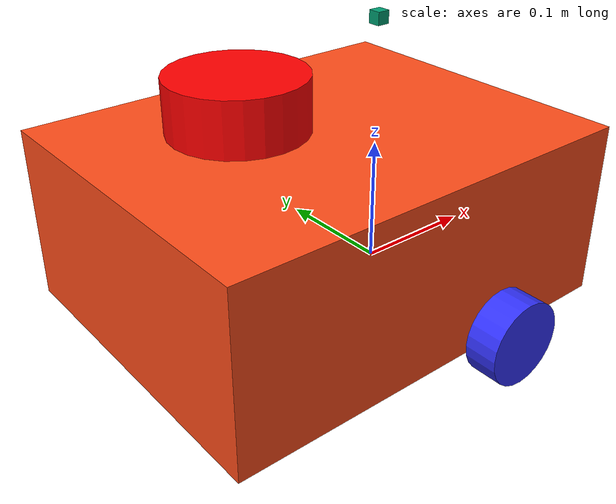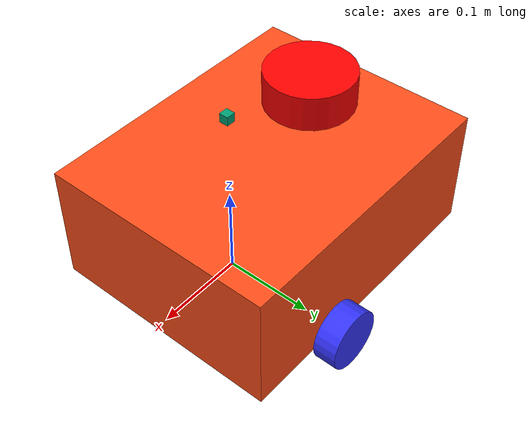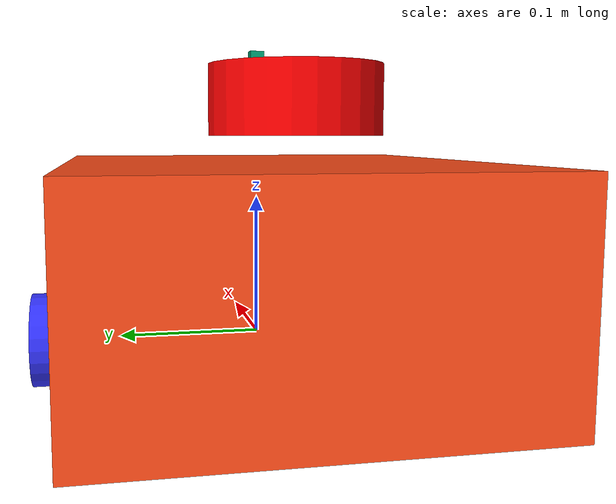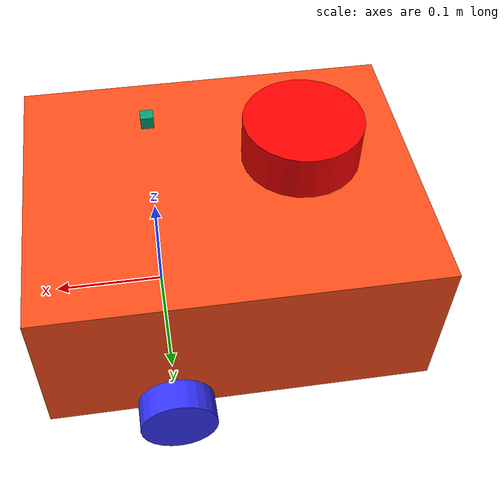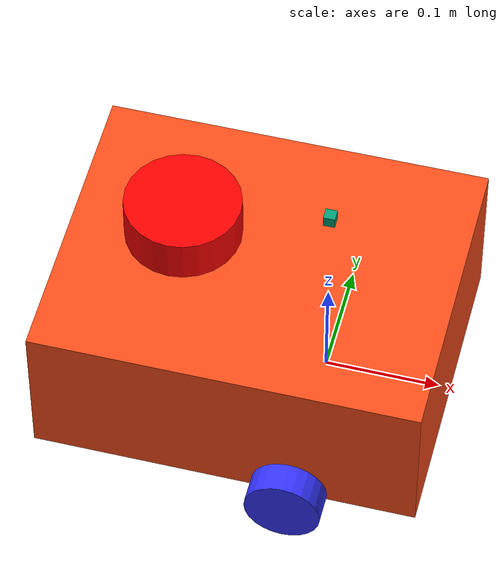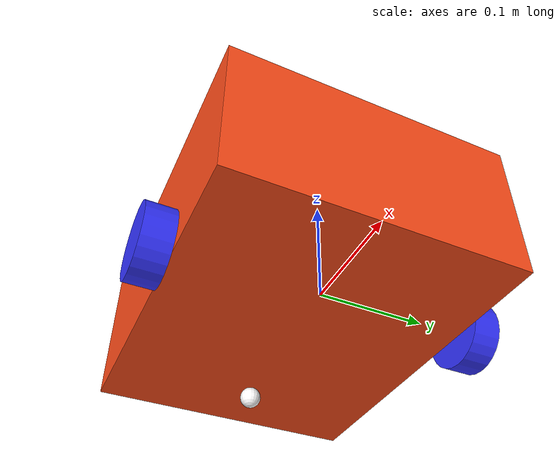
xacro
<?xml version="1.0"?>
<robot xmlns:xacro="http://www.ros.org/wiki/xacro"  name="robot">

    <xacro:include filename="robot_core.xacro" />

    <xacro:include filename="gazebo_control.xacro" />

    <xacro:include filename="depth_camera.xacro" />

    <xacro:include filename="lidar.xacro" />
    <xacro:include filename="imu.xacro" />
    <xacro:include filename="gps.xacro" />

</robot>

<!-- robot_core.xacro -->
<robot xmlns:xacro="http://www.ros.org/wiki/xacro" >

    <xacro:include filename="inertial_macros.xacro"/>

    <xacro:property name="chassis_length" value="0.335"/>
    <xacro:property name="chassis_width" value="0.265"/>
    <xacro:property name="chassis_height" value="0.138"/>
    <xacro:property name="chassis_mass" value="1.0"/>
    <xacro:property name="wheel_radius" value="0.033"/>
    <xacro:property name="wheel_thickness" value="0.026"/>
    <xacro:property name="wheel_mass" value="0.05"/>
    <xacro:property name="wheel_offset_x" value="0.226"/>
    <xacro:property name="wheel_offset_y" value="0.1485"/>
    <xacro:property name="wheel_offset_z" value="0.01"/>
    <xacro:property name="caster_wheel_radius" value="0.01"/>
    <xacro:property name="caster_wheel_mass" value="0.01"/>
    <xacro:property name="caster_wheel_offset_x" value="0.075"/>
    <xacro:property name="caster_wheel_offset_z" value="${wheel_offset_z - wheel_radius + caster_wheel_radius}"/>

    <material name="white">
        <color rgba="1 1 1 1" />
    </material>

    <material name="orange">
        <color rgba="1 0.3 0.1 1"/>
    </material>

    <material name="blue">
        <color rgba="0.2 0.2 1 1"/>
    </material>

    <material name="black">
        <color rgba="0 0 0 1"/>
    </material>

    <material name="red">
        <color rgba="1 0 0 1"/>
    </material>

    <!-- BASE LINK -->

    <link name="base_link">

    </link>

    <!-- BASE_FOOTPRINT LINK -->

    <joint name="base_footprint_joint" type="fixed">
        <parent link="base_link"/>
        <child link="base_footprint"/>
        <origin xyz="0 0 0" rpy="0 0 0"/>
    </joint>

    <link name="base_footprint">
    </link>

    <!-- CHASSIS LINK -->

    <joint name="chassis_joint" type="fixed">
        <parent link="base_link"/>
        <child link="chassis"/>
        <origin xyz="${-wheel_offset_x} 0 ${-wheel_offset_z}"/>
    </joint>

    <link name="chassis">
        <visual>
            <origin xyz="${chassis_length/2} 0 ${chassis_height/2}"/>
            <geometry>
                <box size="${chassis_length} ${chassis_width} ${chassis_height}"/>
            </geometry>
            <material name="orange"/>
        </visual>
        <collision>
            <origin xyz="${chassis_length/2} 0 ${chassis_height/2}"/>
            <geometry>
                <box size="${chassis_length} ${chassis_width} ${chassis_height}"/>
            </geometry>
        </collision>
        <xacro:inertial_box mass="0.7" x="${chassis_length}" y="${chassis_width}" z="${chassis_height}">
            <origin xyz="${chassis_length/2} 0 ${chassis_height/2}" rpy="0 0 0"/>
        </xacro:inertial_box>
    </link>

    <gazebo reference="chassis">
        <material>Gazebo/Orange</material>
    </gazebo>

    <!-- LEFT WHEEL LINK -->

    <joint name="left_wheel_joint" type="continuous">
        <parent link="base_link"/>
        <child link="left_wheel"/>
        <origin xyz="0 ${wheel_offset_y} 0" rpy="-${pi/2} 0 0" />
        <axis xyz="0 0 1"/>
    </joint>

    <link name="left_wheel">
        <visual>
            <geometry>
                <cylinder radius="${wheel_radius}" length="${wheel_thickness}"/>
            </geometry>
            <material name="blue"/>
        </visual>
        <collision>
            <geometry>
                <sphere radius="${wheel_radius}"/>
            </geometry>
        </collision>
        <xacro:inertial_cylinder mass="${wheel_mass}" length="${wheel_thickness}" radius="${wheel_radius}">
            <origin xyz="0 0 0" rpy="0 0 0"/>
        </xacro:inertial_cylinder>
    </link>

    <gazebo reference="left_wheel">
        <material>Gazebo/Blue</material>
    </gazebo>

    <!-- RIGHT WHEEL LINK -->

    <joint name="right_wheel_joint" type="continuous">
        <parent link="base_link"/>
        <child link="right_wheel"/>
        <origin xyz="0 ${-wheel_offset_y} 0" rpy="${pi/2} 0 0" />
        <axis xyz="0 0 -1"/>
    </joint>

    <link name="right_wheel">
        <visual>
            <geometry>
                <cylinder radius="${wheel_radius}" length="${wheel_thickness}"/>
            </geometry>
            <material name="blue"/>
        </visual>
        <collision>
            <geometry>
                <sphere radius="${wheel_radius}"/>
            </geometry>
        </collision>
        <xacro:inertial_cylinder mass="${wheel_mass}" length="${wheel_thickness}" radius="${wheel_radius}">
            <origin xyz="0 0 0" rpy="0 0 0"/>
        </xacro:inertial_cylinder>
    </link>

    <gazebo reference="right_wheel">
        <material>Gazebo/Blue</material>
    </gazebo>

    <!-- CASTER WHEEL LINK -->

    <joint name="caster_wheel_joint" type="fixed">
        <parent link="chassis"/>
        <child link="caster_wheel"/>
        <origin xyz="${caster_wheel_offset_x} 0 ${caster_wheel_offset_z}"/>
    </joint>

    <link name="caster_wheel">
        <visual>
            <geometry>
                <sphere radius="${caster_wheel_radius}"/>
            </geometry>
            <material name="white"/>
        </visual>
        <collision>
            <geometry>
                <sphere radius="${caster_wheel_radius}"/>
            </geometry>
        </collision>
        <xacro:inertial_sphere mass="${caster_wheel_mass}" radius="${caster_wheel_radius}">
            <origin xyz="0 0 0" rpy="0 0 0"/>
        </xacro:inertial_sphere>
    </link>

    <gazebo reference="caster_wheel">
        <material>Gazebo/White</material>
        <mu1 value="0.01"/>
        <mu2 value="0.01"/>
    </gazebo>

</robot>

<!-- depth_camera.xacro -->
<robot xmlns:xacro="http://www.ros.org/wiki/xacro" >

    <joint name="camera_joint" type="fixed">
        <parent link="chassis"/>
        <child link="camera_link"/>
        <origin xyz="0.305 0 0.08" rpy="0 0 0"/>
    </joint>

    <link name="camera_link">
        <visual>
            <geometry>
                <box size="0.010 0.03 0.03"/>
            </geometry>
            <material name="red"/>
        </visual>
    </link>

    <joint name="camera_optical_joint" type="fixed">
        <parent link="camera_link"/>
        <child link="camera_link_optical"/>
        <origin xyz="0 0 0" rpy="${-pi/2} 0 ${-pi/2}"/>
    </joint>

    <link name="camera_link_optical"></link>

    <gazebo reference="camera_link">
        <material>Gazebo/Red</material>

        <sensor name="camera" type="depth">
            <pose> 0 0 0 0 0 0 </pose>
            <visualize>true</visualize>
            <update_rate>10</update_rate>
            <camera>
                <horizontal_fov>1.089</horizontal_fov>
                <image>
                    <format>B8G8R8</format>
                    <width>640</width>
                    <height>480</height>
                </image>
                <clip>
                    <near>0.05</near>
                    <far>8.0</far>
                </clip>
            </camera>
            <plugin name="camera_controller" filename="libgazebo_ros_camera.so">
                <frame_name>camera_link_optical</frame_name>
                <min_depth>0.1</min_depth>
                <max_depth>100</max_depth>

            </plugin>
        </sensor>
    </gazebo>

</robot>

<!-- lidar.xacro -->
<robot xmlns:xacro="http://www.ros.org/wiki/xacro" >

    <joint name="laser_joint" type="fixed">
        <parent link="chassis"/>
        <child link="laser_frame"/>
        <origin xyz="0.1 0 0.175" rpy="0 0 0"/>
    </joint>

    <link name="laser_frame">
        <visual>
            <geometry>
                <cylinder radius="0.05" length="0.04"/>
            </geometry>
            <material name="red"/>
        </visual>
        <collision>
            <geometry>
                <cylinder radius="0.05" length="0.04"/>
            </geometry>
        </collision>
        <xacro:inertial_cylinder mass="0.1" length="0.04" radius="0.05">
            <origin xyz="0 0 0" rpy="0 0 0"/>
        </xacro:inertial_cylinder>
    </link>

    <gazebo reference="laser_frame">
        <material>Gazebo/Red</material>

        <sensor name="laser" type="ray">
            <pose> 0 0 0 0 0 0 </pose>
            <visualize>true</visualize>
            <update_rate>10</update_rate>
            <ray>
                <scan>
                    <horizontal>
                        <samples>360</samples>
                        <min_angle>-3.14</min_angle>
                        <max_angle>3.14</max_angle>
                    </horizontal>
                </scan>
                <range>
                    <min>0.3</min>
                    <max>12</max>
                </range>
            </ray>
            <plugin name="laser_controller" filename="libgazebo_ros_ray_sensor.so">
                <ros>
                    <argument>~/out:=scan1</argument>
                </ros>
                <output_type>sensor_msgs/LaserScan</output_type>
                <frame_name>laser_frame</frame_name>
            </plugin>
        </sensor>
    </gazebo>

</robot>

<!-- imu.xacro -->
<robot xmlns:xacro="http://www.ros.org/wiki/xacro">

    <link name="imu_link">
        <visual>
            <geometry>
                <box size="0.01 0.01 0.01"/>
            </geometry>
        </visual>

        <collision>
            <geometry>
                <box size="0.01 0.01 0.01"/>
            </geometry>
        </collision>

    </link>

    <joint name="imu_joint" type="fixed">
        <parent link="base_link"/>
        <child link="imu_link"/>
        <origin xyz="0 0 0.1"/>
    </joint>

    <gazebo reference="imu_link">
        <sensor name="imu_sensor" type="imu">
            <plugin filename="libgazebo_ros_imu_sensor.so" name="imu_plugin">
                <ros>
                    <namespace>/demo</namespace>
                    <remapping>~/out:=imu</remapping>
                </ros>
                <initial_orientation_as_reference>false</initial_orientation_as_reference>
            </plugin>
            <always_on>true</always_on>
            <update_rate>100</update_rate>
            <visualize>true</visualize>
           <angular_velocity>
            <x>
                <noise type="gaussian">
                <mean>0.0</mean>
                <stddev>2e-4</stddev>
                <bias_mean>0.0000075</bias_mean>
                <bias_stddev>0.0000008</bias_stddev>
                </noise>
            </x>
            <y>
                <noise type="gaussian">
                <mean>0.0</mean>
                <stddev>2e-4</stddev>
                <bias_mean>0.0000075</bias_mean>
                <bias_stddev>0.0000008</bias_stddev>
                </noise>
            </y>
            <z>
                <noise type="gaussian">
                <mean>0.0</mean>
                <stddev>2e-4</stddev>
                <bias_mean>0.0000075</bias_mean>
                <bias_stddev>0.0000008</bias_stddev>
                </noise>
            </z>
            </angular_velocity>
            <linear_acceleration>
            <x>
                <noise type="gaussian">
                <mean>0.0</mean>
                <stddev>1.7e-2</stddev>
                <bias_mean>0.1</bias_mean>
                <bias_stddev>0.001</bias_stddev>
                </noise>
            </x>
            <y>
                <noise type="gaussian">
                <mean>0.0</mean>
                <stddev>1.7e-2</stddev>
                <bias_mean>0.1</bias_mean>
                <bias_stddev>0.001</bias_stddev>
                </noise>
            </y>
            <z>
                <noise type="gaussian">
                <mean>0.0</mean>
                <stddev>1.7e-2</stddev>
                <bias_mean>0.1</bias_mean>
                <bias_stddev>0.001</bias_stddev>
                </noise>
            </z>
            </linear_acceleration>
        </sensor>
    </gazebo>

</robot>

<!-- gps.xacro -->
<robot xmlns:xacro="http://www.ros.org/wiki/xacro">

    <link name="gps_link">
        <visual>
            <geometry>
                <box size="0.01 0.01 0.01"/>
            </geometry>
        </visual>

        <collision>
            <geometry>
                <box size="0.01 0.01 0.01"/>
            </geometry>
        </collision>

    </link>

    <joint name="gps_joint" type="fixed">
        <parent link="base_link"/>
        <child link="gps_link"/>
        <origin xyz="0 0 0.2"/>
    </joint>

    <gazebo reference="gps_link">
        <sensor name="tb3_gps" type="gps">
            <always_on>true</always_on>
            <update_rate>1</update_rate>
            <pose>0 0 0 0 0 0</pose>
            <gps>
              <position_sensing>
                <horizontal>
                  <noise type="gaussian">
                    <mean>0.0</mean>
                    <stddev>0.01</stddev>
                  </noise>
                </horizontal>
                <vertical>
                  <noise type="gaussian">
                    <mean>0.0</mean>
                    <stddev>0.01</stddev>
                  </noise>
                </vertical>
              </position_sensing>
            </gps>
            <plugin name="my_gps_plugin" filename="libgazebo_ros_gps_sensor.so">
              <ros>
                <remapping>~/out:=/gps/fix</remapping>
              </ros>
            </plugin>
        </sensor>
    </gazebo>

</robot>
